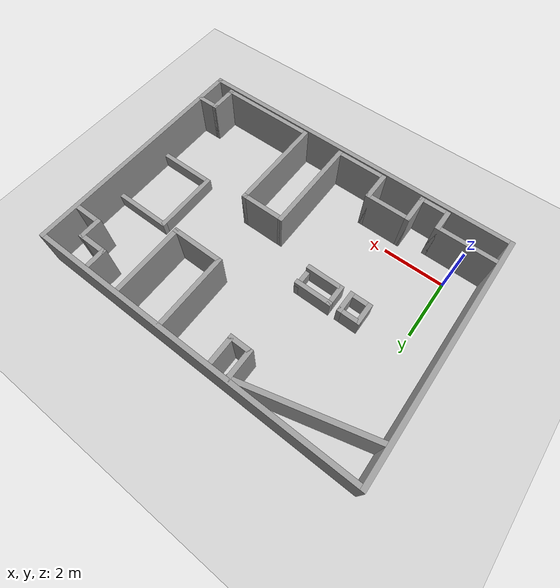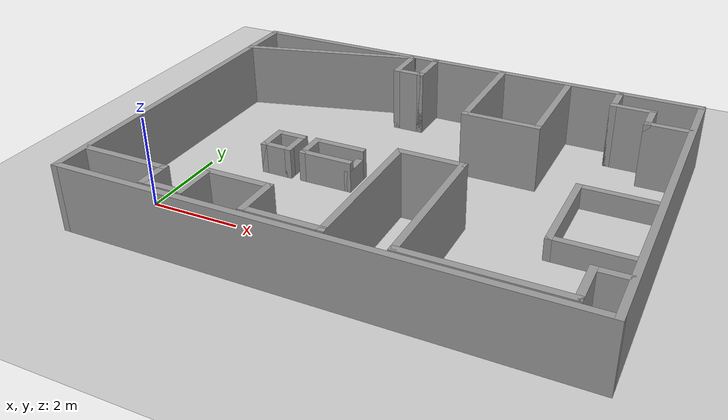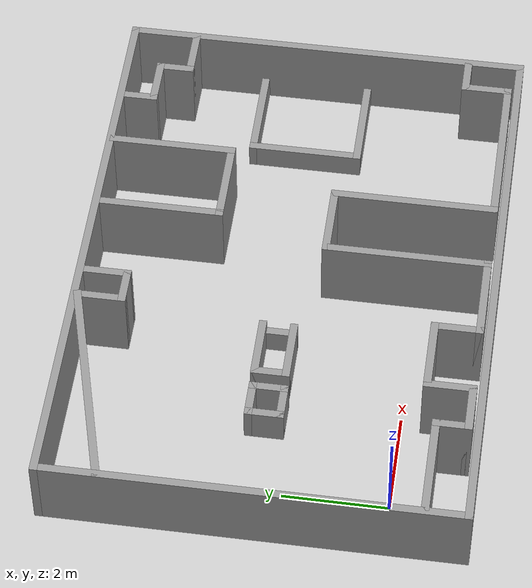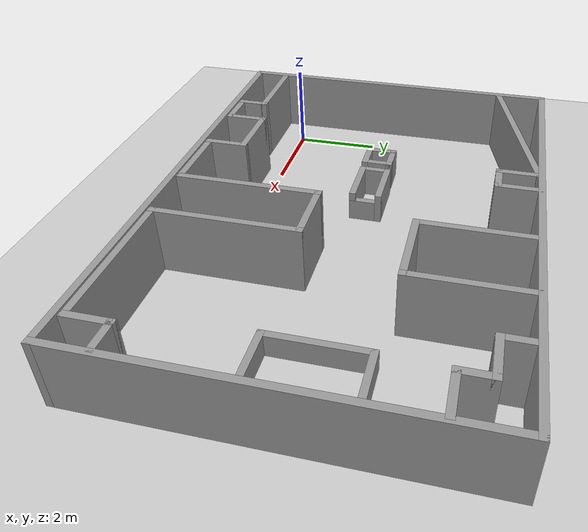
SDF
<sdf version="1.7">
 <world name="default">
  <light name="sun" type="directional">
   <pose>0 0 10 0 -0 0</pose>
   <diffuse>0.8 0.8 0.8 1</diffuse>
   <specular>0.2 0.2 0.2 1</specular>
   <attenuation>
    <range>1000</range>
    <constant>0.9</constant>
    <linear>0.01</linear>
    <quadratic>0.001</quadratic>
   </attenuation>
   <direction>-0.5 0.1 -0.9</direction>
   <spot><inner_angle>0</inner_angle><outer_angle>0</outer_angle><falloff>0</falloff></spot>
  </light>
  <model name="ground_plane">
   <static>1</static>
   <link name="link">
    <collision name="collision">
     <geometry><plane><normal>0 0 1</normal><size>100 100</size></plane></geometry>
     <surface><friction><ode><mu>100</mu><mu2>50</mu2></ode></friction></surface>
    </collision>
    <visual name="visual">
     <cast_shadows>0</cast_shadows>
     <geometry><plane><normal>0 0 1</normal><size>100 100</size></plane></geometry>
     <material>
      <script><uri>file://media/materials/scripts/gazebo.material</uri><name>Gazebo/Grey</name></script>
     </material>
    </visual>
   </link>
  </model>
  <gravity>0 0 -9.8</gravity>
  <magnetic_field>6e-06 2.3e-05 -4.2e-05</magnetic_field>
  <atmosphere type="adiabatic"/>
  <physics type="ode">
   <max_step_size>0.001</max_step_size>
   <real_time_factor>1</real_time_factor>
   <real_time_update_rate>1000</real_time_update_rate>
  </physics>
  <scene><ambient>0.4 0.4 0.4 1</ambient><background>0.7 0.7 0.7 1</background><shadows>1</shadows></scene>
  <spherical_coordinates>
   <surface_model>EARTH_WGS84</surface_model>
   <latitude_deg>0</latitude_deg>
   <longitude_deg>0</longitude_deg>
   <elevation>0</elevation>
   <heading_deg>0</heading_deg>
  </spherical_coordinates>
  <model name="Untitled">
   <pose>-11.9563 3.15387 0 0 -0 0</pose>
   <link name="Wall_148">
    <collision name="Wall_148_Collision">
     <geometry><box><size>8 0.15 1.5</size></box></geometry>
     <pose>0 0 0.75 0 -0 0</pose>
    </collision>
    <visual name="Wall_148_Visual">
     <pose>0 0 0.75 0 -0 0</pose>
     <geometry><box><size>8 0.15 1.5</size></box></geometry>
     <material>
      <script><uri>file://media/materials/scripts/gazebo.material</uri><name>Gazebo/Grey</name></script>
      <ambient>1 1 1 1</ambient>
     </material>
     <meta><layer>0</layer></meta>
    </visual>
    <pose>11.0109 -0.715813 0 0 -0 -1.5708</pose>
   </link>
   <link name="Wall_150">
    <collision name="Wall_150_Collision">
     <geometry><box><size>11 0.15 1.5</size></box></geometry>
     <pose>0 0 0.75 0 -0 0</pose>
    </collision>
    <visual name="Wall_150_Visual">
     <pose>0 0 0.75 0 -0 0</pose>
     <geometry><box><size>11 0.15 1.5</size></box></geometry>
     <material>
      <script><uri>file://media/materials/scripts/gazebo.material</uri><name>Gazebo/Grey</name></script>
      <ambient>1 1 1 1</ambient>
     </material>
     <meta><layer>0</layer></meta>
    </visual>
    <pose>16.4359 3.20919 0 0 -0 0</pose>
   </link>
   <link name="Wall_151">
    <collision name="Wall_151_Collision">
     <geometry><box><size>8 0.15 1.5</size></box></geometry>
     <pose>0 0 0.75 0 -0 0</pose>
    </collision>
    <visual name="Wall_151_Visual">
     <pose>0 0 0.75 0 -0 0</pose>
     <geometry><box><size>8 0.15 1.5</size></box></geometry>
     <material>
      <script><uri>file://media/materials/scripts/gazebo.material</uri><name>Gazebo/Grey</name></script>
      <ambient>1 1 1 1</ambient>
     </material>
     <meta><layer>0</layer></meta>
    </visual>
    <pose>21.8609 -0.715813 0 0 -0 -1.5708</pose>
   </link>
   <link name="Wall_152">
    <collision name="Wall_152_Collision">
     <geometry><box><size>11 0.15 1.5</size></box></geometry>
     <pose>0 0 0.75 0 -0 0</pose>
    </collision>
    <visual name="Wall_152_Visual">
     <pose>0 0 0.75 0 -0 0</pose>
     <geometry><box><size>11 0.15 1.5</size></box></geometry>
     <material>
      <script><uri>file://media/materials/scripts/gazebo.material</uri><name>Gazebo/Grey</name></script>
      <ambient>1 1 1 1</ambient>
     </material>
     <meta><layer>0</layer></meta>
    </visual>
    <pose>16.4359 -4.64081 0 0 -0 3.14159</pose>
   </link>
   <link name="Wall_157">
    <collision name="Wall_157_Collision">
     <geometry><box><size>0.75 0.15 0.7</size></box></geometry>
     <pose>0 0 0.35 0 -0 0</pose>
    </collision>
    <visual name="Wall_157_Visual">
     <pose>0 0 0.35 0 -0 0</pose>
     <geometry><box><size>0.75 0.15 0.7</size></box></geometry>
     <material>
      <script><uri>file://media/materials/scripts/gazebo.material</uri><name>Gazebo/Grey</name></script>
      <ambient>1 1 1 1</ambient>
     </material>
     <meta><layer>0</layer></meta>
    </visual>
    <pose>13.9009 -0.641813 0 0 -0 -1.5708</pose>
   </link>
   <link name="Wall_160">
    <collision name="Wall_160_Collision">
     <geometry><box><size>0.75 0.15 0.7</size></box></geometry>
     <pose>0 0 0.35 0 -0 0</pose>
    </collision>
    <visual name="Wall_160_Visual">
     <pose>0 0 0.35 0 -0 0</pose>
     <geometry><box><size>0.75 0.15 0.7</size></box></geometry>
     <material>
      <script><uri>file://media/materials/scripts/gazebo.material</uri><name>Gazebo/Grey</name></script>
      <ambient>1 1 1 1</ambient>
     </material>
     <meta><layer>0</layer></meta>
    </visual>
    <pose>13.6009 -0.341813 0 0 -0 3.14159</pose>
   </link>
   <link name="Wall_161">
    <collision name="Wall_161_Collision">
     <geometry><box><size>0.75 0.15 0.7</size></box></geometry>
     <pose>0 0 0.35 0 -0 0</pose>
    </collision>
    <visual name="Wall_161_Visual">
     <pose>0 0 0.35 0 -0 0</pose>
     <geometry><box><size>0.75 0.15 0.7</size></box></geometry>
     <material>
      <script><uri>file://media/materials/scripts/gazebo.material</uri><name>Gazebo/Grey</name></script>
      <ambient>1 1 1 1</ambient>
     </material>
     <meta><layer>0</layer></meta>
    </visual>
    <pose>13.3009 -0.641813 0 0 -0 -1.5708</pose>
   </link>
   <link name="Wall_162">
    <collision name="Wall_162_Collision">
     <geometry><box><size>0.75 0.15 0.7</size></box></geometry>
     <pose>0 0 0.35 0 -0 0</pose>
    </collision>
    <visual name="Wall_162_Visual">
     <pose>0 0 0.35 0 -0 0</pose>
     <geometry><box><size>0.75 0.15 0.7</size></box></geometry>
     <material>
      <script><uri>file://media/materials/scripts/gazebo.material</uri><name>Gazebo/Grey</name></script>
      <ambient>1 1 1 1</ambient>
     </material>
     <meta><layer>0</layer></meta>
    </visual>
    <pose>13.6009 -0.941813 0 0 -0 0</pose>
   </link>
   <link name="Wall_168">
    <collision name="Wall_168_Collision">
     <geometry><box><size>1.25 0.15 0.7</size></box></geometry>
     <pose>0 0 0.35 0 -0 0</pose>
    </collision>
    <visual name="Wall_168_Visual">
     <pose>0 0 0.35 0 -0 0</pose>
     <geometry><box><size>1.25 0.15 0.7</size></box></geometry>
     <material>
      <script><uri>file://media/materials/scripts/gazebo.material</uri><name>Gazebo/Grey</name></script>
      <ambient>1 1 1 1</ambient>
     </material>
     <meta><layer>0</layer></meta>
    </visual>
    <pose>14.8059 -0.322813 0 0 -0 3.14159</pose>
   </link>
   <link name="Wall_180">
    <collision name="Wall_180_Collision">
     <geometry><box><size>2.5 0.15 1.5</size></box></geometry>
     <pose>0 0 0.75 0 -0 0</pose>
    </collision>
    <visual name="Wall_180_Visual">
     <pose>0 0 0.75 0 -0 0</pose>
     <geometry><box><size>2.5 0.15 1.5</size></box></geometry>
     <material>
      <script><uri>file://media/materials/scripts/gazebo.material</uri><name>Gazebo/Grey</name></script>
      <ambient>1 1 1 1</ambient>
     </material>
     <meta><layer>0</layer></meta>
    </visual>
    <pose>17.3089 1.96719 0 0 -0 -1.5708</pose>
   </link>
   <link name="Wall_181">
    <collision name="Wall_181_Collision">
     <geometry><box><size>1.75 0.15 1.5</size></box></geometry>
     <pose>0 0 0.75 0 -0 0</pose>
    </collision>
    <visual name="Wall_181_Visual">
     <pose>0 0 0.75 0 -0 0</pose>
     <geometry><box><size>1.75 0.15 1.5</size></box></geometry>
     <material>
      <script><uri>file://media/materials/scripts/gazebo.material</uri><name>Gazebo/Grey</name></script>
      <ambient>1 1 1 1</ambient>
     </material>
     <meta><layer>0</layer></meta>
    </visual>
    <pose>18.1089 0.792187 0 0 -0 0</pose>
   </link>
   <link name="Wall_182">
    <collision name="Wall_182_Collision">
     <geometry><box><size>2.5 0.15 1.5</size></box></geometry>
     <pose>0 0 0.75 0 -0 0</pose>
    </collision>
    <visual name="Wall_182_Visual">
     <pose>0 0 0.75 0 -0 0</pose>
     <geometry><box><size>2.5 0.15 1.5</size></box></geometry>
     <material>
      <script><uri>file://media/materials/scripts/gazebo.material</uri><name>Gazebo/Grey</name></script>
      <ambient>1 1 1 1</ambient>
     </material>
     <meta><layer>0</layer></meta>
    </visual>
    <pose>18.9089 1.96719 0 0 -0 1.5708</pose>
   </link>
   <link name="Wall_184">
    <collision name="Wall_184_Collision">
     <geometry><box><size>0.75 0.15 0.7</size></box></geometry>
     <pose>0 0 0.35 0 -0 0</pose>
    </collision>
    <visual name="Wall_184_Visual">
     <pose>0 0 0.35 0 -0 0</pose>
     <geometry><box><size>0.75 0.15 0.7</size></box></geometry>
     <material>
      <script><uri>file://media/materials/scripts/gazebo.material</uri><name>Gazebo/Grey</name></script>
      <ambient>1 1 1 1</ambient>
     </material>
     <meta><layer>0</layer></meta>
    </visual>
    <pose>14.2559 -0.622813 0 0 -0 -1.5708</pose>
   </link>
   <link name="Wall_185">
    <collision name="Wall_185_Collision">
     <geometry><box><size>1.25 0.15 0.7</size></box></geometry>
     <pose>0 0 0.35 0 -0 0</pose>
    </collision>
    <visual name="Wall_185_Visual">
     <pose>0 0 0.35 0 -0 0</pose>
     <geometry><box><size>1.25 0.15 0.7</size></box></geometry>
     <material>
      <script><uri>file://media/materials/scripts/gazebo.material</uri><name>Gazebo/Grey</name></script>
      <ambient>1 1 1 1</ambient>
     </material>
     <meta><layer>0</layer></meta>
    </visual>
    <pose>14.8059 -0.922813 0 0 -0 0</pose>
   </link>
   <link name="Wall_186">
    <collision name="Wall_186_Collision">
     <geometry><box><size>0.75 0.15 0.5</size></box></geometry>
     <pose>0 0 0.25 0 -0 0</pose>
    </collision>
    <visual name="Wall_186_Visual">
     <pose>0 0 0.25 0 -0 0</pose>
     <geometry><box><size>0.75 0.15 0.5</size></box></geometry>
     <material>
      <script><uri>file://media/materials/scripts/gazebo.material</uri><name>Gazebo/Grey</name></script>
      <ambient>1 1 1 1</ambient>
     </material>
     <meta><layer>0</layer></meta>
    </visual>
    <pose>15.3559 -0.622813 0 0 -0 1.5708</pose>
   </link>
   <link name="Wall_190">
    <collision name="Wall_190_Collision">
     <geometry><box><size>2 0.15 1.5</size></box></geometry>
     <pose>0 0 0.75 0 -0 0</pose>
    </collision>
    <visual name="Wall_190_Visual">
     <pose>0 0 0.75 0 -0 0</pose>
     <geometry><box><size>2 0.15 1.5</size></box></geometry>
     <material>
      <script><uri>file://media/materials/scripts/gazebo.material</uri><name>Gazebo/Grey</name></script>
      <ambient>1 1 1 1</ambient>
     </material>
     <meta><layer>0</layer></meta>
    </visual>
    <pose>12.0199 -3.85281 0 0 -0 0</pose>
   </link>
   <link name="Wall_191">
    <collision name="Wall_191_Collision">
     <geometry><box><size>0.75 0.15 1.5</size></box></geometry>
     <pose>0 0 0.75 0 -0 0</pose>
    </collision>
    <visual name="Wall_191_Visual">
     <pose>0 0 0.75 0 -0 0</pose>
     <geometry><box><size>0.75 0.15 1.5</size></box></geometry>
     <material>
      <script><uri>file://media/materials/scripts/gazebo.material</uri><name>Gazebo/Grey</name></script>
      <ambient>1 1 1 1</ambient>
     </material>
     <meta><layer>0</layer></meta>
    </visual>
    <pose>12.9449 -4.15281 0 0 -0 -1.5708</pose>
   </link>
   <link name="Wall_192">
    <collision name="Wall_192_Collision">
     <geometry><box><size>1 0.15 1.5</size></box></geometry>
     <pose>0 0 0.75 0 -0 0</pose>
    </collision>
    <visual name="Wall_192_Visual">
     <pose>0 0 0.75 0 -0 0</pose>
     <geometry><box><size>1 0.15 1.5</size></box></geometry>
     <material>
      <script><uri>file://media/materials/scripts/gazebo.material</uri><name>Gazebo/Grey</name></script>
      <ambient>1 1 1 1</ambient>
     </material>
     <meta><layer>0</layer></meta>
    </visual>
    <pose>13.3699 -4.45281 0 0 -0 0</pose>
   </link>
   <link name="Wall_193">
    <collision name="Wall_193_Collision">
     <geometry><box><size>1 0.15 1.5</size></box></geometry>
     <pose>0 0 0.75 0 -0 0</pose>
    </collision>
    <visual name="Wall_193_Visual">
     <pose>0 0 0.75 0 -0 0</pose>
     <geometry><box><size>1 0.15 1.5</size></box></geometry>
     <material>
      <script><uri>file://media/materials/scripts/gazebo.material</uri><name>Gazebo/Grey</name></script>
      <ambient>1 1 1 1</ambient>
     </material>
     <meta><layer>0</layer></meta>
    </visual>
    <pose>13.7949 -4.02781 0 0 -0 1.5708</pose>
   </link>
   <link name="Wall_194">
    <collision name="Wall_194_Collision">
     <geometry><box><size>1.5 0.15 1.5</size></box></geometry>
     <pose>0 0 0.75 0 -0 0</pose>
    </collision>
    <visual name="Wall_194_Visual">
     <pose>0 0 0.75 0 -0 0</pose>
     <geometry><box><size>1.5 0.15 1.5</size></box></geometry>
     <material>
      <script><uri>file://media/materials/scripts/gazebo.material</uri><name>Gazebo/Grey</name></script>
      <ambient>1 1 1 1</ambient>
     </material>
     <meta><layer>0</layer></meta>
    </visual>
    <pose>14.4699 -3.60281 0 0 -0 0</pose>
   </link>
   <link name="Wall_195">
    <collision name="Wall_195_Collision">
     <geometry><box><size>1 0.15 1.5</size></box></geometry>
     <pose>0 0 0.75 0 -0 0</pose>
    </collision>
    <visual name="Wall_195_Visual">
     <pose>0 0 0.75 0 -0 0</pose>
     <geometry><box><size>1 0.15 1.5</size></box></geometry>
     <material>
      <script><uri>file://media/materials/scripts/gazebo.material</uri><name>Gazebo/Grey</name></script>
      <ambient>1 1 1 1</ambient>
     </material>
     <meta><layer>0</layer></meta>
    </visual>
    <pose>15.1449 -4.02781 0 0 -0 -1.5708</pose>
   </link>
   <link name="Wall_196">
    <collision name="Wall_196_Collision">
     <geometry><box><size>1.75 0.15 1.5</size></box></geometry>
     <pose>0 0 0.75 0 -0 0</pose>
    </collision>
    <visual name="Wall_196_Visual">
     <pose>0 0 0.75 0 -0 0</pose>
     <geometry><box><size>1.75 0.15 1.5</size></box></geometry>
     <material>
      <script><uri>file://media/materials/scripts/gazebo.material</uri><name>Gazebo/Grey</name></script>
      <ambient>1 1 1 1</ambient>
     </material>
     <meta><layer>0</layer></meta>
    </visual>
    <pose>15.9449 -4.45281 0 0 -0 0</pose>
   </link>
   <link name="Wall_203">
    <collision name="Wall_203_Collision">
     <geometry><box><size>3.25 0.15 1.5</size></box></geometry>
     <pose>0 0 0.75 0 -0 0</pose>
    </collision>
    <visual name="Wall_203_Visual">
     <pose>0 0 0.75 0 -0 0</pose>
     <geometry><box><size>3.25 0.15 1.5</size></box></geometry>
     <material>
      <script><uri>file://media/materials/scripts/gazebo.material</uri><name>Gazebo/Grey</name></script>
      <ambient>1 1 1 1</ambient>
     </material>
     <meta><layer>0</layer></meta>
    </visual>
    <pose>16.7449 -2.90281 0 0 -0 1.5708</pose>
   </link>
   <link name="Wall_205">
    <collision name="Wall_205_Collision">
     <geometry><box><size>1.5 0.15 1.5</size></box></geometry>
     <pose>0 0 0.75 0 -0 0</pose>
    </collision>
    <visual name="Wall_205_Visual">
     <pose>0 0 0.75 0 -0 0</pose>
     <geometry><box><size>1.5 0.15 1.5</size></box></geometry>
     <material>
      <script><uri>file://media/materials/scripts/gazebo.material</uri><name>Gazebo/Grey</name></script>
      <ambient>1 1 1 1</ambient>
     </material>
     <meta><layer>0</layer></meta>
    </visual>
    <pose>17.4199 -1.35281 0 0 -0 0</pose>
   </link>
   <link name="Wall_206">
    <collision name="Wall_206_Collision">
     <geometry><box><size>3.25 0.15 1.5</size></box></geometry>
     <pose>0 0 0.75 0 -0 0</pose>
    </collision>
    <visual name="Wall_206_Visual">
     <pose>0 0 0.75 0 -0 0</pose>
     <geometry><box><size>3.25 0.15 1.5</size></box></geometry>
     <material>
      <script><uri>file://media/materials/scripts/gazebo.material</uri><name>Gazebo/Grey</name></script>
      <ambient>1 1 1 1</ambient>
     </material>
     <meta><layer>0</layer></meta>
    </visual>
    <pose>18.0949 -2.90281 0 0 -0 -1.5708</pose>
   </link>
   <link name="Wall_207">
    <collision name="Wall_207_Collision">
     <geometry><box><size>3.25 0.15 1.5</size></box></geometry>
     <pose>0 0 0.75 0 -0 0</pose>
    </collision>
    <visual name="Wall_207_Visual">
     <pose>0 0 0.75 0 -0 0</pose>
     <geometry><box><size>3.25 0.15 1.5</size></box></geometry>
     <material>
      <script><uri>file://media/materials/scripts/gazebo.material</uri><name>Gazebo/Grey</name></script>
      <ambient>1 1 1 1</ambient>
     </material>
     <meta><layer>0</layer></meta>
    </visual>
    <pose>19.6449 -4.45281 0 0 -0 0</pose>
   </link>
   <link name="Wall_208">
    <collision name="Wall_208_Collision">
     <geometry><box><size>1 0.15 1.5</size></box></geometry>
     <pose>0 0 0.75 0 -0 0</pose>
    </collision>
    <visual name="Wall_208_Visual">
     <pose>0 0 0.75 0 -0 0</pose>
     <geometry><box><size>1 0.15 1.5</size></box></geometry>
     <material>
      <script><uri>file://media/materials/scripts/gazebo.material</uri><name>Gazebo/Grey</name></script>
      <ambient>1 1 1 1</ambient>
     </material>
     <meta><layer>0</layer></meta>
    </visual>
    <pose>21.1949 -4.02781 0 0 -0 1.5708</pose>
   </link>
   <link name="Wall_209">
    <collision name="Wall_209_Collision">
     <geometry><box><size>0.75 0.15 1.5</size></box></geometry>
     <pose>0 0 0.75 0 -0 0</pose>
    </collision>
    <visual name="Wall_209_Visual">
     <pose>0 0 0.75 0 -0 0</pose>
     <geometry><box><size>0.75 0.15 1.5</size></box></geometry>
     <material>
      <script><uri>file://media/materials/scripts/gazebo.material</uri><name>Gazebo/Grey</name></script>
      <ambient>1 1 1 1</ambient>
     </material>
     <meta><layer>0</layer></meta>
    </visual>
    <pose>21.4949 -3.60281 0 0 -0 0</pose>
   </link>
   <link name="Wall_211">
    <collision name="Wall_211_Collision">
     <geometry><box><size>4.25 0.15 1.5</size></box></geometry>
     <pose>0 0 0.75 0 -0 0</pose>
    </collision>
    <visual name="Wall_211_Visual">
     <pose>0 0 0.75 0 -0 0</pose>
     <geometry><box><size>4.25 0.15 1.5</size></box></geometry>
     <material>
      <script><uri>file://media/materials/scripts/gazebo.material</uri><name>Gazebo/Grey</name></script>
      <ambient>1 1 1 1</ambient>
     </material>
     <meta><layer>0</layer></meta>
    </visual>
    <pose>13.0179 2.61619 0 0 -0 0.262016</pose>
   </link>
   <link name="Wall_213">
    <collision name="Wall_213_Collision">
     <geometry><box><size>1 0.15 1.5</size></box></geometry>
     <pose>0 0 0.75 0 -0 0</pose>
    </collision>
    <visual name="Wall_213_Visual">
     <pose>0 0 0.75 0 -0 0</pose>
     <geometry><box><size>1 0.15 1.5</size></box></geometry>
     <material>
      <script><uri>file://media/materials/scripts/gazebo.material</uri><name>Gazebo/Grey</name></script>
      <ambient>1 1 1 1</ambient>
     </material>
     <meta><layer>0</layer></meta>
    </visual>
    <pose>14.9979 2.72219 0 0 -0 -1.5708</pose>
   </link>
   <link name="Wall_214">
    <collision name="Wall_214_Collision">
     <geometry><box><size>0.75 0.15 1.5</size></box></geometry>
     <pose>0 0 0.75 0 -0 0</pose>
    </collision>
    <visual name="Wall_214_Visual">
     <pose>0 0 0.75 0 -0 0</pose>
     <geometry><box><size>0.75 0.15 1.5</size></box></geometry>
     <material>
      <script><uri>file://media/materials/scripts/gazebo.material</uri><name>Gazebo/Grey</name></script>
      <ambient>1 1 1 1</ambient>
     </material>
     <meta><layer>0</layer></meta>
    </visual>
    <pose>15.2979 2.29719 0 0 -0 0</pose>
   </link>
   <link name="Wall_215">
    <collision name="Wall_215_Collision">
     <geometry><box><size>1 0.15 1.5</size></box></geometry>
     <pose>0 0 0.75 0 -0 0</pose>
    </collision>
    <visual name="Wall_215_Visual">
     <pose>0 0 0.75 0 -0 0</pose>
     <geometry><box><size>1 0.15 1.5</size></box></geometry>
     <material>
      <script><uri>file://media/materials/scripts/gazebo.material</uri><name>Gazebo/Grey</name></script>
      <ambient>1 1 1 1</ambient>
     </material>
     <meta><layer>0</layer></meta>
    </visual>
    <pose>15.5979 2.72219 0 0 -0 1.5708</pose>
   </link>
   <link name="Wall_217">
    <collision name="Wall_217_Collision">
     <geometry><box><size>0.75 0.15 1.5</size></box></geometry>
     <pose>0 0 0.75 0 -0 0</pose>
    </collision>
    <visual name="Wall_217_Visual">
     <pose>0 0 0.75 0 -0 0</pose>
     <geometry><box><size>0.75 0.15 1.5</size></box></geometry>
     <material>
      <script><uri>file://media/materials/scripts/gazebo.material</uri><name>Gazebo/Grey</name></script>
      <ambient>1 1 1 1</ambient>
     </material>
     <meta><layer>0</layer></meta>
    </visual>
    <pose>20.0929 2.84419 0 0 -0 -1.5708</pose>
   </link>
   <link name="Wall_218">
    <collision name="Wall_218_Collision">
     <geometry><box><size>1 0.15 1.5</size></box></geometry>
     <pose>0 0 0.75 0 -0 0</pose>
    </collision>
    <visual name="Wall_218_Visual">
     <pose>0 0 0.75 0 -0 0</pose>
     <geometry><box><size>1 0.15 1.5</size></box></geometry>
     <material>
      <script><uri>file://media/materials/scripts/gazebo.material</uri><name>Gazebo/Grey</name></script>
      <ambient>1 1 1 1</ambient>
     </material>
     <meta><layer>0</layer></meta>
    </visual>
    <pose>20.5179 2.54419 0 0 -0 0</pose>
   </link>
   <link name="Wall_219">
    <collision name="Wall_219_Collision">
     <geometry><box><size>0.75 0.15 1.5</size></box></geometry>
     <pose>0 0 0.75 0 -0 0</pose>
    </collision>
    <visual name="Wall_219_Visual">
     <pose>0 0 0.75 0 -0 0</pose>
     <geometry><box><size>0.75 0.15 1.5</size></box></geometry>
     <material>
      <script><uri>file://media/materials/scripts/gazebo.material</uri><name>Gazebo/Grey</name></script>
      <ambient>1 1 1 1</ambient>
     </material>
     <meta><layer>0</layer></meta>
    </visual>
    <pose>20.9429 2.24419 0 0 -0 -1.5708</pose>
   </link>
   <link name="Wall_220">
    <collision name="Wall_220_Collision">
     <geometry><box><size>1 0.15 1.5</size></box></geometry>
     <pose>0 0 0.75 0 -0 0</pose>
    </collision>
    <visual name="Wall_220_Visual">
     <pose>0 0 0.75 0 -0 0</pose>
     <geometry><box><size>1 0.15 1.5</size></box></geometry>
     <material>
      <script><uri>file://media/materials/scripts/gazebo.material</uri><name>Gazebo/Grey</name></script>
      <ambient>1 1 1 1</ambient>
     </material>
     <meta><layer>0</layer></meta>
    </visual>
    <pose>21.3679 1.94419 0 0 -0 0</pose>
   </link>
   <link name="Wall_222">
    <collision name="Wall_222_Collision">
     <geometry><box><size>2 0.15 0.5</size></box></geometry>
     <pose>0 0 0.25 0 -0 0</pose>
    </collision>
    <visual name="Wall_222_Visual">
     <pose>0 0 0.25 0 -0 0</pose>
     <geometry><box><size>2 0.15 0.5</size></box></geometry>
     <material>
      <script><uri>file://media/materials/scripts/gazebo.material</uri><name>Gazebo/Grey</name></script>
      <ambient>1 1 1 1</ambient>
     </material>
     <meta><layer>0</layer></meta>
    </visual>
    <pose>20.8779 0.521187 0 0 -0 3.14159</pose>
   </link>
   <link name="Wall_223">
    <collision name="Wall_223_Collision">
     <geometry><box><size>2.25 0.15 0.5</size></box></geometry>
     <pose>0 0 0.25 0 -0 0</pose>
    </collision>
    <visual name="Wall_223_Visual">
     <pose>0 0 0.25 0 -0 0</pose>
     <geometry><box><size>2.25 0.15 0.5</size></box></geometry>
     <material>
      <script><uri>file://media/materials/scripts/gazebo.material</uri><name>Gazebo/Grey</name></script>
      <ambient>1 1 1 1</ambient>
     </material>
     <meta><layer>0</layer></meta>
    </visual>
    <pose>19.9529 -0.528813 0 0 -0 -1.5708</pose>
   </link>
   <link name="Wall_224">
    <collision name="Wall_224_Collision">
     <geometry><box><size>2 0.15 0.5</size></box></geometry>
     <pose>0 0 0.25 0 -0 0</pose>
    </collision>
    <visual name="Wall_224_Visual">
     <pose>0 0 0.25 0 -0 0</pose>
     <geometry><box><size>2 0.15 0.5</size></box></geometry>
     <material>
      <script><uri>file://media/materials/scripts/gazebo.material</uri><name>Gazebo/Grey</name></script>
      <ambient>1 1 1 1</ambient>
     </material>
     <meta><layer>0</layer></meta>
    </visual>
    <pose>20.8779 -1.57881 0 0 -0 0</pose>
   </link>
   <static>1</static>
  </model>
 </world>
</sdf>
